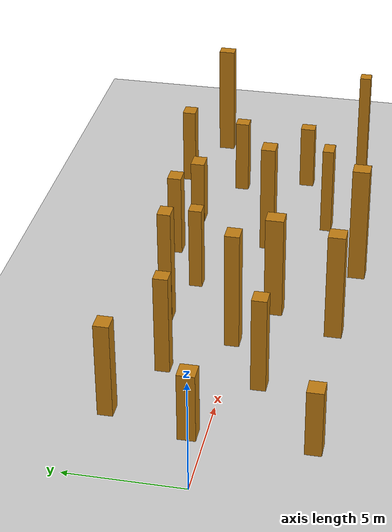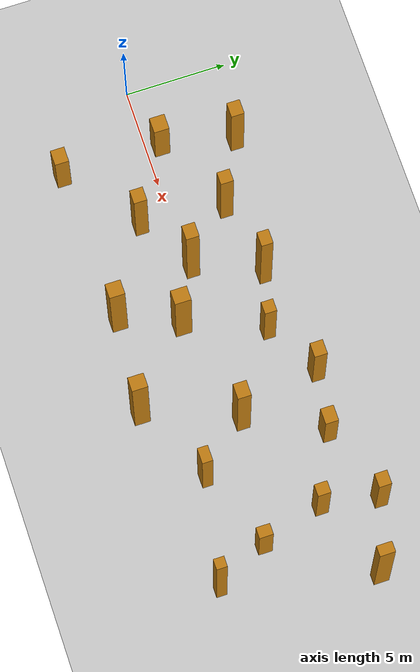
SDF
<sdf version="1.7">
 <world name="default">
  <light name="sun" type="directional">
   <pose>0 0 10 0 -0 0</pose>
   <diffuse>0.8 0.8 0.8 1</diffuse>
   <specular>0.2 0.2 0.2 1</specular>
   <attenuation>
    <range>1000</range>
    <constant>0.9</constant>
    <linear>0.01</linear>
    <quadratic>0.001</quadratic>
   </attenuation>
   <direction>-0.5 0.1 -0.9</direction>
   <spot><inner_angle>0</inner_angle><outer_angle>0</outer_angle><falloff>0</falloff></spot>
  </light>
  <model name="ground_plane">
   <static>1</static>
   <link name="link">
    <collision name="collision">
     <geometry><plane><normal>0 0 1</normal><size>100 100</size></plane></geometry>
     <surface>
      <contact><collide_bitmask>65535</collide_bitmask></contact>
      <friction><ode><mu>100</mu><mu2>50</mu2></ode></friction>
     </surface>
    </collision>
    <visual name="visual">
     <cast_shadows>0</cast_shadows>
     <geometry><plane><normal>0 0 1</normal><size>100 100</size></plane></geometry>
     <material>
      <script><uri>file://media/materials/scripts/gazebo.material</uri><name>Gazebo/Grey</name></script>
     </material>
    </visual>
   </link>
  </model>
  <gravity>0 0 -9.8</gravity>
  <magnetic_field>6e-06 2.3e-05 -4.2e-05</magnetic_field>
  <atmosphere type="adiabatic"/>
  <physics type="ode">
   <max_step_size>0.001</max_step_size>
   <real_time_factor>1</real_time_factor>
   <real_time_update_rate>1000</real_time_update_rate>
  </physics>
  <scene><ambient>0.4 0.4 0.4 1</ambient><background>0.7 0.7 0.7 1</background><shadows>1</shadows></scene>
  <spherical_coordinates>
   <surface_model>EARTH_WGS84</surface_model>
   <latitude_deg>0</latitude_deg>
   <longitude_deg>0</longitude_deg>
   <elevation>0</elevation>
   <heading_deg>0</heading_deg>
  </spherical_coordinates>
  <plugin name="gazebo_octomap" filename="libBuildOctomapPlugin.so"/>
  <model name="model0">
   <link name="link">
    <inertial>
     <mass>1</mass>
     <inertia>
      <ixx>0.166667</ixx>
      <ixy>0</ixy>
      <ixz>0</ixz>
      <iyy>0.166667</iyy>
      <iyz>0</iyz>
      <izz>0.166667</izz>
     </inertia>
    </inertial>
    <visual name="visual">
     <geometry><box><size>0.7628283542211092 0.5104891546530635 4.26483071556089</size></box></geometry>
     <material>
      <script><name>Gazebo/Grey</name><uri>file://media/materials/scripts/gazebo.material</uri></script>
      <shader type="pixel"><normal_map>__default__</normal_map></shader>
      <ambient>0.757 0.49 0.067 1</ambient>
      <diffuse>0.7 0.7 0.7 1</diffuse>
      <specular>0.01 0.01 0.01 1</specular>
      <emissive>0 0 0 1</emissive>
     </material>
    </visual>
    <collision name="collision">
     <geometry><box><size>0.7628283542211092 0.5104891546530635 4.26483071556089</size></box></geometry>
     <surface>
      <friction>
       <ode><mu>1</mu><mu2>1</mu2><fdir1>0 0 0</fdir1><slip1>0</slip1><slip2>0</slip2></ode>
       <torsional>
        <coefficient>1</coefficient>
        <patch_radius>0</patch_radius>
        <surface_radius>0</surface_radius>
        <use_patch_radius>1</use_patch_radius>
        <ode><slip>0</slip></ode>
       </torsional>
      </friction>
      <bounce><restitution_coefficient>0</restitution_coefficient><threshold>1e+06</threshold></bounce>
      <contact>
       <collide_without_contact>0</collide_without_contact>
       <collide_without_contact_bitmask>1</collide_without_contact_bitmask>
       <collide_bitmask>1</collide_bitmask>
       <ode>
        <soft_cfm>0</soft_cfm>
        <soft_erp>0.2</soft_erp>
        <kp>1e+13</kp>
        <kd>1</kd>
        <max_vel>0.01</max_vel>
        <min_depth>0</min_depth>
       </ode>
       <bullet>
        <split_impulse>1</split_impulse>
        <split_impulse_penetration_threshold>-0.01</split_impulse_penetration_threshold>
        <soft_cfm>0</soft_cfm>
        <soft_erp>0.2</soft_erp>
        <kp>1e+13</kp>
        <kd>1</kd>
       </bullet>
      </contact>
     </surface>
    </collision>
   </link>
   <static>0</static>
   <pose>19.665522266672287 -2.4682899309614226 2.132415357780445 0.0 0.0 0.0</pose>
  </model>
  <model name="model1">
   <link name="link">
    <inertial>
     <mass>1</mass>
     <inertia>
      <ixx>0.166667</ixx>
      <ixy>0</ixy>
      <ixz>0</ixz>
      <iyy>0.166667</iyy>
      <iyz>0</iyz>
      <izz>0.166667</izz>
     </inertia>
    </inertial>
    <visual name="visual">
     <geometry><box><size>0.5104946256287669 0.5109382432861893 5.501456208058672</size></box></geometry>
     <material>
      <script><name>Gazebo/Grey</name><uri>file://media/materials/scripts/gazebo.material</uri></script>
      <shader type="pixel"><normal_map>__default__</normal_map></shader>
      <ambient>0.757 0.49 0.067 1</ambient>
      <diffuse>0.7 0.7 0.7 1</diffuse>
      <specular>0.01 0.01 0.01 1</specular>
      <emissive>0 0 0 1</emissive>
     </material>
    </visual>
    <collision name="collision">
     <geometry><box><size>0.5104946256287669 0.5109382432861893 5.501456208058672</size></box></geometry>
     <surface>
      <friction>
       <ode><mu>1</mu><mu2>1</mu2><fdir1>0 0 0</fdir1><slip1>0</slip1><slip2>0</slip2></ode>
       <torsional>
        <coefficient>1</coefficient>
        <patch_radius>0</patch_radius>
        <surface_radius>0</surface_radius>
        <use_patch_radius>1</use_patch_radius>
        <ode><slip>0</slip></ode>
       </torsional>
      </friction>
      <bounce><restitution_coefficient>0</restitution_coefficient><threshold>1e+06</threshold></bounce>
      <contact>
       <collide_without_contact>0</collide_without_contact>
       <collide_without_contact_bitmask>1</collide_without_contact_bitmask>
       <collide_bitmask>1</collide_bitmask>
       <ode>
        <soft_cfm>0</soft_cfm>
        <soft_erp>0.2</soft_erp>
        <kp>1e+13</kp>
        <kd>1</kd>
        <max_vel>0.01</max_vel>
        <min_depth>0</min_depth>
       </ode>
       <bullet>
        <split_impulse>1</split_impulse>
        <split_impulse_penetration_threshold>-0.01</split_impulse_penetration_threshold>
        <soft_cfm>0</soft_cfm>
        <soft_erp>0.2</soft_erp>
        <kp>1e+13</kp>
        <kd>1</kd>
       </bullet>
      </contact>
     </surface>
    </collision>
   </link>
   <static>0</static>
   <pose>24.961154485777374 -3.5035631727208836 2.750728104029336 0.0 0.0 0.0</pose>
  </model>
  <model name="model2">
   <link name="link">
    <inertial>
     <mass>1</mass>
     <inertia>
      <ixx>0.166667</ixx>
      <ixy>0</ixy>
      <ixz>0</ixz>
      <iyy>0.166667</iyy>
      <iyz>0</iyz>
      <izz>0.166667</izz>
     </inertia>
    </inertial>
    <visual name="visual">
     <geometry><box><size>0.708973643089228 0.7974899755338278 4.81063264748637</size></box></geometry>
     <material>
      <script><name>Gazebo/Grey</name><uri>file://media/materials/scripts/gazebo.material</uri></script>
      <shader type="pixel"><normal_map>__default__</normal_map></shader>
      <ambient>0.757 0.49 0.067 1</ambient>
      <diffuse>0.7 0.7 0.7 1</diffuse>
      <specular>0.01 0.01 0.01 1</specular>
      <emissive>0 0 0 1</emissive>
     </material>
    </visual>
    <collision name="collision">
     <geometry><box><size>0.708973643089228 0.7974899755338278 4.81063264748637</size></box></geometry>
     <surface>
      <friction>
       <ode><mu>1</mu><mu2>1</mu2><fdir1>0 0 0</fdir1><slip1>0</slip1><slip2>0</slip2></ode>
       <torsional>
        <coefficient>1</coefficient>
        <patch_radius>0</patch_radius>
        <surface_radius>0</surface_radius>
        <use_patch_radius>1</use_patch_radius>
        <ode><slip>0</slip></ode>
       </torsional>
      </friction>
      <bounce><restitution_coefficient>0</restitution_coefficient><threshold>1e+06</threshold></bounce>
      <contact>
       <collide_without_contact>0</collide_without_contact>
       <collide_without_contact_bitmask>1</collide_without_contact_bitmask>
       <collide_bitmask>1</collide_bitmask>
       <ode>
        <soft_cfm>0</soft_cfm>
        <soft_erp>0.2</soft_erp>
        <kp>1e+13</kp>
        <kd>1</kd>
        <max_vel>0.01</max_vel>
        <min_depth>0</min_depth>
       </ode>
       <bullet>
        <split_impulse>1</split_impulse>
        <split_impulse_penetration_threshold>-0.01</split_impulse_penetration_threshold>
        <soft_cfm>0</soft_cfm>
        <soft_erp>0.2</soft_erp>
        <kp>1e+13</kp>
        <kd>1</kd>
       </bullet>
      </contact>
     </surface>
    </collision>
   </link>
   <static>0</static>
   <pose>12.245718120681722 -1.1823917641248194 2.405316323743185 0.0 0.0 0.0</pose>
  </model>
  <model name="model3">
   <link name="link">
    <inertial>
     <mass>1</mass>
     <inertia>
      <ixx>0.166667</ixx>
      <ixy>0</ixy>
      <ixz>0</ixz>
      <iyy>0.166667</iyy>
      <iyz>0</iyz>
      <izz>0.166667</izz>
     </inertia>
    </inertial>
    <visual name="visual">
     <geometry><box><size>0.7205115883669805 0.6364036782757115 5.47503452337823</size></box></geometry>
     <material>
      <script><name>Gazebo/Grey</name><uri>file://media/materials/scripts/gazebo.material</uri></script>
      <shader type="pixel"><normal_map>__default__</normal_map></shader>
      <ambient>0.757 0.49 0.067 1</ambient>
      <diffuse>0.7 0.7 0.7 1</diffuse>
      <specular>0.01 0.01 0.01 1</specular>
      <emissive>0 0 0 1</emissive>
     </material>
    </visual>
    <collision name="collision">
     <geometry><box><size>0.7205115883669805 0.6364036782757115 5.47503452337823</size></box></geometry>
     <surface>
      <friction>
       <ode><mu>1</mu><mu2>1</mu2><fdir1>0 0 0</fdir1><slip1>0</slip1><slip2>0</slip2></ode>
       <torsional>
        <coefficient>1</coefficient>
        <patch_radius>0</patch_radius>
        <surface_radius>0</surface_radius>
        <use_patch_radius>1</use_patch_radius>
        <ode><slip>0</slip></ode>
       </torsional>
      </friction>
      <bounce><restitution_coefficient>0</restitution_coefficient><threshold>1e+06</threshold></bounce>
      <contact>
       <collide_without_contact>0</collide_without_contact>
       <collide_without_contact_bitmask>1</collide_without_contact_bitmask>
       <collide_bitmask>1</collide_bitmask>
       <ode>
        <soft_cfm>0</soft_cfm>
        <soft_erp>0.2</soft_erp>
        <kp>1e+13</kp>
        <kd>1</kd>
        <max_vel>0.01</max_vel>
        <min_depth>0</min_depth>
       </ode>
       <bullet>
        <split_impulse>1</split_impulse>
        <split_impulse_penetration_threshold>-0.01</split_impulse_penetration_threshold>
        <soft_cfm>0</soft_cfm>
        <soft_erp>0.2</soft_erp>
        <kp>1e+13</kp>
        <kd>1</kd>
       </bullet>
      </contact>
     </surface>
    </collision>
   </link>
   <static>0</static>
   <pose>9.627328036526936 0.15198017195775737 2.737517261689115 0.0 0.0 0.0</pose>
  </model>
  <model name="model4">
   <link name="link">
    <inertial>
     <mass>1</mass>
     <inertia>
      <ixx>0.166667</ixx>
      <ixy>0</ixy>
      <ixz>0</ixz>
      <iyy>0.166667</iyy>
      <iyz>0</iyz>
      <izz>0.166667</izz>
     </inertia>
    </inertial>
    <visual name="visual">
     <geometry><box><size>0.5415839349871882 0.6759867986146829 3.1485874312061184</size></box></geometry>
     <material>
      <script><name>Gazebo/Grey</name><uri>file://media/materials/scripts/gazebo.material</uri></script>
      <shader type="pixel"><normal_map>__default__</normal_map></shader>
      <ambient>0.757 0.49 0.067 1</ambient>
      <diffuse>0.7 0.7 0.7 1</diffuse>
      <specular>0.01 0.01 0.01 1</specular>
      <emissive>0 0 0 1</emissive>
     </material>
    </visual>
    <collision name="collision">
     <geometry><box><size>0.5415839349871882 0.6759867986146829 3.1485874312061184</size></box></geometry>
     <surface>
      <friction>
       <ode><mu>1</mu><mu2>1</mu2><fdir1>0 0 0</fdir1><slip1>0</slip1><slip2>0</slip2></ode>
       <torsional>
        <coefficient>1</coefficient>
        <patch_radius>0</patch_radius>
        <surface_radius>0</surface_radius>
        <use_patch_radius>1</use_patch_radius>
        <ode><slip>0</slip></ode>
       </torsional>
      </friction>
      <bounce><restitution_coefficient>0</restitution_coefficient><threshold>1e+06</threshold></bounce>
      <contact>
       <collide_without_contact>0</collide_without_contact>
       <collide_without_contact_bitmask>1</collide_without_contact_bitmask>
       <collide_bitmask>1</collide_bitmask>
       <ode>
        <soft_cfm>0</soft_cfm>
        <soft_erp>0.2</soft_erp>
        <kp>1e+13</kp>
        <kd>1</kd>
        <max_vel>0.01</max_vel>
        <min_depth>0</min_depth>
       </ode>
       <bullet>
        <split_impulse>1</split_impulse>
        <split_impulse_penetration_threshold>-0.01</split_impulse_penetration_threshold>
        <soft_cfm>0</soft_cfm>
        <soft_erp>0.2</soft_erp>
        <kp>1e+13</kp>
        <kd>1</kd>
       </bullet>
      </contact>
     </surface>
    </collision>
   </link>
   <static>0</static>
   <pose>23.64490482449817 -0.938474373036394 1.5742937156030592 0.0 0.0 0.0</pose>
  </model>
  <model name="model5">
   <link name="link">
    <inertial>
     <mass>1</mass>
     <inertia>
      <ixx>0.166667</ixx>
      <ixy>0</ixy>
      <ixz>0</ixz>
      <iyy>0.166667</iyy>
      <iyz>0</iyz>
      <izz>0.166667</izz>
     </inertia>
    </inertial>
    <visual name="visual">
     <geometry><box><size>0.5823470403490755 0.6299547772762206 3.6116557819007706</size></box></geometry>
     <material>
      <script><name>Gazebo/Grey</name><uri>file://media/materials/scripts/gazebo.material</uri></script>
      <shader type="pixel"><normal_map>__default__</normal_map></shader>
      <ambient>0.757 0.49 0.067 1</ambient>
      <diffuse>0.7 0.7 0.7 1</diffuse>
      <specular>0.01 0.01 0.01 1</specular>
      <emissive>0 0 0 1</emissive>
     </material>
    </visual>
    <collision name="collision">
     <geometry><box><size>0.5823470403490755 0.6299547772762206 3.6116557819007706</size></box></geometry>
     <surface>
      <friction>
       <ode><mu>1</mu><mu2>1</mu2><fdir1>0 0 0</fdir1><slip1>0</slip1><slip2>0</slip2></ode>
       <torsional>
        <coefficient>1</coefficient>
        <patch_radius>0</patch_radius>
        <surface_radius>0</surface_radius>
        <use_patch_radius>1</use_patch_radius>
        <ode><slip>0</slip></ode>
       </torsional>
      </friction>
      <bounce><restitution_coefficient>0</restitution_coefficient><threshold>1e+06</threshold></bounce>
      <contact>
       <collide_without_contact>0</collide_without_contact>
       <collide_without_contact_bitmask>1</collide_without_contact_bitmask>
       <collide_bitmask>1</collide_bitmask>
       <ode>
        <soft_cfm>0</soft_cfm>
        <soft_erp>0.2</soft_erp>
        <kp>1e+13</kp>
        <kd>1</kd>
        <max_vel>0.01</max_vel>
        <min_depth>0</min_depth>
       </ode>
       <bullet>
        <split_impulse>1</split_impulse>
        <split_impulse_penetration_threshold>-0.01</split_impulse_penetration_threshold>
        <soft_cfm>0</soft_cfm>
        <soft_erp>0.2</soft_erp>
        <kp>1e+13</kp>
        <kd>1</kd>
       </bullet>
      </contact>
     </surface>
    </collision>
   </link>
   <static>0</static>
   <pose>22.707644993249197 2.1530666950125923 1.8058278909503853 0.0 0.0 0.0</pose>
  </model>
  <model name="model6">
   <link name="link">
    <inertial>
     <mass>1</mass>
     <inertia>
      <ixx>0.166667</ixx>
      <ixy>0</ixy>
      <ixz>0</ixz>
      <iyy>0.166667</iyy>
      <iyz>0</iyz>
      <izz>0.166667</izz>
     </inertia>
    </inertial>
    <visual name="visual">
     <geometry><box><size>0.7150712085694322 0.5713284135176021 5.344810751559454</size></box></geometry>
     <material>
      <script><name>Gazebo/Grey</name><uri>file://media/materials/scripts/gazebo.material</uri></script>
      <shader type="pixel"><normal_map>__default__</normal_map></shader>
      <ambient>0.757 0.49 0.067 1</ambient>
      <diffuse>0.7 0.7 0.7 1</diffuse>
      <specular>0.01 0.01 0.01 1</specular>
      <emissive>0 0 0 1</emissive>
     </material>
    </visual>
    <collision name="collision">
     <geometry><box><size>0.7150712085694322 0.5713284135176021 5.344810751559454</size></box></geometry>
     <surface>
      <friction>
       <ode><mu>1</mu><mu2>1</mu2><fdir1>0 0 0</fdir1><slip1>0</slip1><slip2>0</slip2></ode>
       <torsional>
        <coefficient>1</coefficient>
        <patch_radius>0</patch_radius>
        <surface_radius>0</surface_radius>
        <use_patch_radius>1</use_patch_radius>
        <ode><slip>0</slip></ode>
       </torsional>
      </friction>
      <bounce><restitution_coefficient>0</restitution_coefficient><threshold>1e+06</threshold></bounce>
      <contact>
       <collide_without_contact>0</collide_without_contact>
       <collide_without_contact_bitmask>1</collide_without_contact_bitmask>
       <collide_bitmask>1</collide_bitmask>
       <ode>
        <soft_cfm>0</soft_cfm>
        <soft_erp>0.2</soft_erp>
        <kp>1e+13</kp>
        <kd>1</kd>
        <max_vel>0.01</max_vel>
        <min_depth>0</min_depth>
       </ode>
       <bullet>
        <split_impulse>1</split_impulse>
        <split_impulse_penetration_threshold>-0.01</split_impulse_penetration_threshold>
        <soft_cfm>0</soft_cfm>
        <soft_erp>0.2</soft_erp>
        <kp>1e+13</kp>
        <kd>1</kd>
       </bullet>
      </contact>
     </surface>
    </collision>
   </link>
   <static>0</static>
   <pose>10.980131615634473 3.330228856818577 2.672405375779727 0.0 0.0 0.0</pose>
  </model>
  <model name="model7">
   <link name="link">
    <inertial>
     <mass>1</mass>
     <inertia>
      <ixx>0.166667</ixx>
      <ixy>0</ixy>
      <ixz>0</ixz>
      <iyy>0.166667</iyy>
      <iyz>0</iyz>
      <izz>0.166667</izz>
     </inertia>
    </inertial>
    <visual name="visual">
     <geometry><box><size>0.7633105504935005 0.6900684113748242 3.0277289446170217</size></box></geometry>
     <material>
      <script><name>Gazebo/Grey</name><uri>file://media/materials/scripts/gazebo.material</uri></script>
      <shader type="pixel"><normal_map>__default__</normal_map></shader>
      <ambient>0.757 0.49 0.067 1</ambient>
      <diffuse>0.7 0.7 0.7 1</diffuse>
      <specular>0.01 0.01 0.01 1</specular>
      <emissive>0 0 0 1</emissive>
     </material>
    </visual>
    <collision name="collision">
     <geometry><box><size>0.7633105504935005 0.6900684113748242 3.0277289446170217</size></box></geometry>
     <surface>
      <friction>
       <ode><mu>1</mu><mu2>1</mu2><fdir1>0 0 0</fdir1><slip1>0</slip1><slip2>0</slip2></ode>
       <torsional>
        <coefficient>1</coefficient>
        <patch_radius>0</patch_radius>
        <surface_radius>0</surface_radius>
        <use_patch_radius>1</use_patch_radius>
        <ode><slip>0</slip></ode>
       </torsional>
      </friction>
      <bounce><restitution_coefficient>0</restitution_coefficient><threshold>1e+06</threshold></bounce>
      <contact>
       <collide_without_contact>0</collide_without_contact>
       <collide_without_contact_bitmask>1</collide_without_contact_bitmask>
       <collide_bitmask>1</collide_bitmask>
       <ode>
        <soft_cfm>0</soft_cfm>
        <soft_erp>0.2</soft_erp>
        <kp>1e+13</kp>
        <kd>1</kd>
        <max_vel>0.01</max_vel>
        <min_depth>0</min_depth>
       </ode>
       <bullet>
        <split_impulse>1</split_impulse>
        <split_impulse_penetration_threshold>-0.01</split_impulse_penetration_threshold>
        <soft_cfm>0</soft_cfm>
        <soft_erp>0.2</soft_erp>
        <kp>1e+13</kp>
        <kd>1</kd>
       </bullet>
      </contact>
     </surface>
    </collision>
   </link>
   <static>0</static>
   <pose>3.2165446819768313 -4.292522170971412 1.5138644723085108 0.0 0.0 0.0</pose>
  </model>
  <model name="model8">
   <link name="link">
    <inertial>
     <mass>1</mass>
     <inertia>
      <ixx>0.166667</ixx>
      <ixy>0</ixy>
      <ixz>0</ixz>
      <iyy>0.166667</iyy>
      <iyz>0</iyz>
      <izz>0.166667</izz>
     </inertia>
    </inertial>
    <visual name="visual">
     <geometry><box><size>0.7737278202334392 0.7498753631040336 3.1315445466677736</size></box></geometry>
     <material>
      <script><name>Gazebo/Grey</name><uri>file://media/materials/scripts/gazebo.material</uri></script>
      <shader type="pixel"><normal_map>__default__</normal_map></shader>
      <ambient>0.757 0.49 0.067 1</ambient>
      <diffuse>0.7 0.7 0.7 1</diffuse>
      <specular>0.01 0.01 0.01 1</specular>
      <emissive>0 0 0 1</emissive>
     </material>
    </visual>
    <collision name="collision">
     <geometry><box><size>0.7737278202334392 0.7498753631040336 3.1315445466677736</size></box></geometry>
     <surface>
      <friction>
       <ode><mu>1</mu><mu2>1</mu2><fdir1>0 0 0</fdir1><slip1>0</slip1><slip2>0</slip2></ode>
       <torsional>
        <coefficient>1</coefficient>
        <patch_radius>0</patch_radius>
        <surface_radius>0</surface_radius>
        <use_patch_radius>1</use_patch_radius>
        <ode><slip>0</slip></ode>
       </torsional>
      </friction>
      <bounce><restitution_coefficient>0</restitution_coefficient><threshold>1e+06</threshold></bounce>
      <contact>
       <collide_without_contact>0</collide_without_contact>
       <collide_without_contact_bitmask>1</collide_without_contact_bitmask>
       <collide_bitmask>1</collide_bitmask>
       <ode>
        <soft_cfm>0</soft_cfm>
        <soft_erp>0.2</soft_erp>
        <kp>1e+13</kp>
        <kd>1</kd>
        <max_vel>0.01</max_vel>
        <min_depth>0</min_depth>
       </ode>
       <bullet>
        <split_impulse>1</split_impulse>
        <split_impulse_penetration_threshold>-0.01</split_impulse_penetration_threshold>
        <soft_cfm>0</soft_cfm>
        <soft_erp>0.2</soft_erp>
        <kp>1e+13</kp>
        <kd>1</kd>
       </bullet>
      </contact>
     </surface>
    </collision>
   </link>
   <static>0</static>
   <pose>3.1681355438164855 0.6996386803867995 1.5657722733338868 0.0 0.0 0.0</pose>
  </model>
  <model name="model9">
   <link name="link">
    <inertial>
     <mass>1</mass>
     <inertia>
      <ixx>0.166667</ixx>
      <ixy>0</ixy>
      <ixz>0</ixz>
      <iyy>0.166667</iyy>
      <iyz>0</iyz>
      <izz>0.166667</izz>
     </inertia>
    </inertial>
    <visual name="visual">
     <geometry><box><size>0.6907167760505852 0.7643705694955327 5.523729865389686</size></box></geometry>
     <material>
      <script><name>Gazebo/Grey</name><uri>file://media/materials/scripts/gazebo.material</uri></script>
      <shader type="pixel"><normal_map>__default__</normal_map></shader>
      <ambient>0.757 0.49 0.067 1</ambient>
      <diffuse>0.7 0.7 0.7 1</diffuse>
      <specular>0.01 0.01 0.01 1</specular>
      <emissive>0 0 0 1</emissive>
     </material>
    </visual>
    <collision name="collision">
     <geometry><box><size>0.6907167760505852 0.7643705694955327 5.523729865389686</size></box></geometry>
     <surface>
      <friction>
       <ode><mu>1</mu><mu2>1</mu2><fdir1>0 0 0</fdir1><slip1>0</slip1><slip2>0</slip2></ode>
       <torsional>
        <coefficient>1</coefficient>
        <patch_radius>0</patch_radius>
        <surface_radius>0</surface_radius>
        <use_patch_radius>1</use_patch_radius>
        <ode><slip>0</slip></ode>
       </torsional>
      </friction>
      <bounce><restitution_coefficient>0</restitution_coefficient><threshold>1e+06</threshold></bounce>
      <contact>
       <collide_without_contact>0</collide_without_contact>
       <collide_without_contact_bitmask>1</collide_without_contact_bitmask>
       <collide_bitmask>1</collide_bitmask>
       <ode>
        <soft_cfm>0</soft_cfm>
        <soft_erp>0.2</soft_erp>
        <kp>1e+13</kp>
        <kd>1</kd>
        <max_vel>0.01</max_vel>
        <min_depth>0</min_depth>
       </ode>
       <bullet>
        <split_impulse>1</split_impulse>
        <split_impulse_penetration_threshold>-0.01</split_impulse_penetration_threshold>
        <soft_cfm>0</soft_cfm>
        <soft_erp>0.2</soft_erp>
        <kp>1e+13</kp>
        <kd>1</kd>
       </bullet>
      </contact>
     </surface>
    </collision>
   </link>
   <static>0</static>
   <pose>15.82114846485965 -4.40296288581056 2.761864932694843 0.0 0.0 0.0</pose>
  </model>
  <model name="model10">
   <link name="link">
    <inertial>
     <mass>1</mass>
     <inertia>
      <ixx>0.166667</ixx>
      <ixy>0</ixy>
      <ixz>0</ixz>
      <iyy>0.166667</iyy>
      <iyz>0</iyz>
      <izz>0.166667</izz>
     </inertia>
    </inertial>
    <visual name="visual">
     <geometry><box><size>0.7474835824992785 0.6501406756835282 5.221307194284503</size></box></geometry>
     <material>
      <script><name>Gazebo/Grey</name><uri>file://media/materials/scripts/gazebo.material</uri></script>
      <shader type="pixel"><normal_map>__default__</normal_map></shader>
      <ambient>0.757 0.49 0.067 1</ambient>
      <diffuse>0.7 0.7 0.7 1</diffuse>
      <specular>0.01 0.01 0.01 1</specular>
      <emissive>0 0 0 1</emissive>
     </material>
    </visual>
    <collision name="collision">
     <geometry><box><size>0.7474835824992785 0.6501406756835282 5.221307194284503</size></box></geometry>
     <surface>
      <friction>
       <ode><mu>1</mu><mu2>1</mu2><fdir1>0 0 0</fdir1><slip1>0</slip1><slip2>0</slip2></ode>
       <torsional>
        <coefficient>1</coefficient>
        <patch_radius>0</patch_radius>
        <surface_radius>0</surface_radius>
        <use_patch_radius>1</use_patch_radius>
        <ode><slip>0</slip></ode>
       </torsional>
      </friction>
      <bounce><restitution_coefficient>0</restitution_coefficient><threshold>1e+06</threshold></bounce>
      <contact>
       <collide_without_contact>0</collide_without_contact>
       <collide_without_contact_bitmask>1</collide_without_contact_bitmask>
       <collide_bitmask>1</collide_bitmask>
       <ode>
        <soft_cfm>0</soft_cfm>
        <soft_erp>0.2</soft_erp>
        <kp>1e+13</kp>
        <kd>1</kd>
        <max_vel>0.01</max_vel>
        <min_depth>0</min_depth>
       </ode>
       <bullet>
        <split_impulse>1</split_impulse>
        <split_impulse_penetration_threshold>-0.01</split_impulse_penetration_threshold>
        <soft_cfm>0</soft_cfm>
        <soft_erp>0.2</soft_erp>
        <kp>1e+13</kp>
        <kd>1</kd>
       </bullet>
      </contact>
     </surface>
    </collision>
   </link>
   <static>0</static>
   <pose>17.561543982386738 0.008237883053078043 2.6106535971422513 0.0 0.0 0.0</pose>
  </model>
  <model name="model11">
   <link name="link">
    <inertial>
     <mass>1</mass>
     <inertia>
      <ixx>0.166667</ixx>
      <ixy>0</ixy>
      <ixz>0</ixz>
      <iyy>0.166667</iyy>
      <iyz>0</iyz>
      <izz>0.166667</izz>
     </inertia>
    </inertial>
    <visual name="visual">
     <geometry><box><size>0.7118838269696044 0.624573676157755 3.9267784640267323</size></box></geometry>
     <material>
      <script><name>Gazebo/Grey</name><uri>file://media/materials/scripts/gazebo.material</uri></script>
      <shader type="pixel"><normal_map>__default__</normal_map></shader>
      <ambient>0.757 0.49 0.067 1</ambient>
      <diffuse>0.7 0.7 0.7 1</diffuse>
      <specular>0.01 0.01 0.01 1</specular>
      <emissive>0 0 0 1</emissive>
     </material>
    </visual>
    <collision name="collision">
     <geometry><box><size>0.7118838269696044 0.624573676157755 3.9267784640267323</size></box></geometry>
     <surface>
      <friction>
       <ode><mu>1</mu><mu2>1</mu2><fdir1>0 0 0</fdir1><slip1>0</slip1><slip2>0</slip2></ode>
       <torsional>
        <coefficient>1</coefficient>
        <patch_radius>0</patch_radius>
        <surface_radius>0</surface_radius>
        <use_patch_radius>1</use_patch_radius>
        <ode><slip>0</slip></ode>
       </torsional>
      </friction>
      <bounce><restitution_coefficient>0</restitution_coefficient><threshold>1e+06</threshold></bounce>
      <contact>
       <collide_without_contact>0</collide_without_contact>
       <collide_without_contact_bitmask>1</collide_without_contact_bitmask>
       <collide_bitmask>1</collide_bitmask>
       <ode>
        <soft_cfm>0</soft_cfm>
        <soft_erp>0.2</soft_erp>
        <kp>1e+13</kp>
        <kd>1</kd>
        <max_vel>0.01</max_vel>
        <min_depth>0</min_depth>
       </ode>
       <bullet>
        <split_impulse>1</split_impulse>
        <split_impulse_penetration_threshold>-0.01</split_impulse_penetration_threshold>
        <soft_cfm>0</soft_cfm>
        <soft_erp>0.2</soft_erp>
        <kp>1e+13</kp>
        <kd>1</kd>
       </bullet>
      </contact>
     </surface>
    </collision>
   </link>
   <static>0</static>
   <pose>16.41681701403528 4.1228580317286045 1.9633892320133661 0.0 0.0 0.0</pose>
  </model>
  <model name="model12">
   <link name="link">
    <inertial>
     <mass>1</mass>
     <inertia>
      <ixx>0.166667</ixx>
      <ixy>0</ixy>
      <ixz>0</ixz>
      <iyy>0.166667</iyy>
      <iyz>0</iyz>
      <izz>0.166667</izz>
     </inertia>
    </inertial>
    <visual name="visual">
     <geometry><box><size>0.6889491920358437 0.642778192684732 4.409847848366471</size></box></geometry>
     <material>
      <script><name>Gazebo/Grey</name><uri>file://media/materials/scripts/gazebo.material</uri></script>
      <shader type="pixel"><normal_map>__default__</normal_map></shader>
      <ambient>0.757 0.49 0.067 1</ambient>
      <diffuse>0.7 0.7 0.7 1</diffuse>
      <specular>0.01 0.01 0.01 1</specular>
      <emissive>0 0 0 1</emissive>
     </material>
    </visual>
    <collision name="collision">
     <geometry><box><size>0.6889491920358437 0.642778192684732 4.409847848366471</size></box></geometry>
     <surface>
      <friction>
       <ode><mu>1</mu><mu2>1</mu2><fdir1>0 0 0</fdir1><slip1>0</slip1><slip2>0</slip2></ode>
       <torsional>
        <coefficient>1</coefficient>
        <patch_radius>0</patch_radius>
        <surface_radius>0</surface_radius>
        <use_patch_radius>1</use_patch_radius>
        <ode><slip>0</slip></ode>
       </torsional>
      </friction>
      <bounce><restitution_coefficient>0</restitution_coefficient><threshold>1e+06</threshold></bounce>
      <contact>
       <collide_without_contact>0</collide_without_contact>
       <collide_without_contact_bitmask>1</collide_without_contact_bitmask>
       <collide_bitmask>1</collide_bitmask>
       <ode>
        <soft_cfm>0</soft_cfm>
        <soft_erp>0.2</soft_erp>
        <kp>1e+13</kp>
        <kd>1</kd>
        <max_vel>0.01</max_vel>
        <min_depth>0</min_depth>
       </ode>
       <bullet>
        <split_impulse>1</split_impulse>
        <split_impulse_penetration_threshold>-0.01</split_impulse_penetration_threshold>
        <soft_cfm>0</soft_cfm>
        <soft_erp>0.2</soft_erp>
        <kp>1e+13</kp>
        <kd>1</kd>
       </bullet>
      </contact>
     </surface>
    </collision>
   </link>
   <static>0</static>
   <pose>6.799075704871645 -1.4913857078304806 2.2049239241832357 0.0 0.0 0.0</pose>
  </model>
  <model name="model13">
   <link name="link">
    <inertial>
     <mass>1</mass>
     <inertia>
      <ixx>0.166667</ixx>
      <ixy>0</ixy>
      <ixz>0</ixz>
      <iyy>0.166667</iyy>
      <iyz>0</iyz>
      <izz>0.166667</izz>
     </inertia>
    </inertial>
    <visual name="visual">
     <geometry><box><size>0.6799056245100198 0.6097214487593201 3.7447514649054425</size></box></geometry>
     <material>
      <script><name>Gazebo/Grey</name><uri>file://media/materials/scripts/gazebo.material</uri></script>
      <shader type="pixel"><normal_map>__default__</normal_map></shader>
      <ambient>0.757 0.49 0.067 1</ambient>
      <diffuse>0.7 0.7 0.7 1</diffuse>
      <specular>0.01 0.01 0.01 1</specular>
      <emissive>0 0 0 1</emissive>
     </material>
    </visual>
    <collision name="collision">
     <geometry><box><size>0.6799056245100198 0.6097214487593201 3.7447514649054425</size></box></geometry>
     <surface>
      <friction>
       <ode><mu>1</mu><mu2>1</mu2><fdir1>0 0 0</fdir1><slip1>0</slip1><slip2>0</slip2></ode>
       <torsional>
        <coefficient>1</coefficient>
        <patch_radius>0</patch_radius>
        <surface_radius>0</surface_radius>
        <use_patch_radius>1</use_patch_radius>
        <ode><slip>0</slip></ode>
       </torsional>
      </friction>
      <bounce><restitution_coefficient>0</restitution_coefficient><threshold>1e+06</threshold></bounce>
      <contact>
       <collide_without_contact>0</collide_without_contact>
       <collide_without_contact_bitmask>1</collide_without_contact_bitmask>
       <collide_bitmask>1</collide_bitmask>
       <ode>
        <soft_cfm>0</soft_cfm>
        <soft_erp>0.2</soft_erp>
        <kp>1e+13</kp>
        <kd>1</kd>
        <max_vel>0.01</max_vel>
        <min_depth>0</min_depth>
       </ode>
       <bullet>
        <split_impulse>1</split_impulse>
        <split_impulse_penetration_threshold>-0.01</split_impulse_penetration_threshold>
        <soft_cfm>0</soft_cfm>
        <soft_erp>0.2</soft_erp>
        <kp>1e+13</kp>
        <kd>1</kd>
       </bullet>
      </contact>
     </surface>
    </collision>
   </link>
   <static>0</static>
   <pose>23.173958464304633 4.900014148187417 1.8723757324527213 0.0 0.0 0.0</pose>
  </model>
  <model name="model14">
   <link name="link">
    <inertial>
     <mass>1</mass>
     <inertia>
      <ixx>0.166667</ixx>
      <ixy>0</ixy>
      <ixz>0</ixz>
      <iyy>0.166667</iyy>
      <iyz>0</iyz>
      <izz>0.166667</izz>
     </inertia>
    </inertial>
    <visual name="visual">
     <geometry><box><size>0.6273904054700281 0.6292784027173948 4.591124467984779</size></box></geometry>
     <material>
      <script><name>Gazebo/Grey</name><uri>file://media/materials/scripts/gazebo.material</uri></script>
      <shader type="pixel"><normal_map>__default__</normal_map></shader>
      <ambient>0.757 0.49 0.067 1</ambient>
      <diffuse>0.7 0.7 0.7 1</diffuse>
      <specular>0.01 0.01 0.01 1</specular>
      <emissive>0 0 0 1</emissive>
     </material>
    </visual>
    <collision name="collision">
     <geometry><box><size>0.6273904054700281 0.6292784027173948 4.591124467984779</size></box></geometry>
     <surface>
      <friction>
       <ode><mu>1</mu><mu2>1</mu2><fdir1>0 0 0</fdir1><slip1>0</slip1><slip2>0</slip2></ode>
       <torsional>
        <coefficient>1</coefficient>
        <patch_radius>0</patch_radius>
        <surface_radius>0</surface_radius>
        <use_patch_radius>1</use_patch_radius>
        <ode><slip>0</slip></ode>
       </torsional>
      </friction>
      <bounce><restitution_coefficient>0</restitution_coefficient><threshold>1e+06</threshold></bounce>
      <contact>
       <collide_without_contact>0</collide_without_contact>
       <collide_without_contact_bitmask>1</collide_without_contact_bitmask>
       <collide_bitmask>1</collide_bitmask>
       <ode>
        <soft_cfm>0</soft_cfm>
        <soft_erp>0.2</soft_erp>
        <kp>1e+13</kp>
        <kd>1</kd>
        <max_vel>0.01</max_vel>
        <min_depth>0</min_depth>
       </ode>
       <bullet>
        <split_impulse>1</split_impulse>
        <split_impulse_penetration_threshold>-0.01</split_impulse_penetration_threshold>
        <soft_cfm>0</soft_cfm>
        <soft_erp>0.2</soft_erp>
        <kp>1e+13</kp>
        <kd>1</kd>
       </bullet>
      </contact>
     </surface>
    </collision>
   </link>
   <static>0</static>
   <pose>7.2658173119644704 2.633744942486514 2.2955622339923893 0.0 0.0 0.0</pose>
  </model>
  <model name="model15">
   <link name="link">
    <inertial>
     <mass>1</mass>
     <inertia>
      <ixx>0.166667</ixx>
      <ixy>0</ixy>
      <ixz>0</ixz>
      <iyy>0.166667</iyy>
      <iyz>0</iyz>
      <izz>0.166667</izz>
     </inertia>
    </inertial>
    <visual name="visual">
     <geometry><box><size>0.7192599172320617 0.7515329068442658 5.023366435661908</size></box></geometry>
     <material>
      <script><name>Gazebo/Grey</name><uri>file://media/materials/scripts/gazebo.material</uri></script>
      <shader type="pixel"><normal_map>__default__</normal_map></shader>
      <ambient>0.757 0.49 0.067 1</ambient>
      <diffuse>0.7 0.7 0.7 1</diffuse>
      <specular>0.01 0.01 0.01 1</specular>
      <emissive>0 0 0 1</emissive>
     </material>
    </visual>
    <collision name="collision">
     <geometry><box><size>0.7192599172320617 0.7515329068442658 5.023366435661908</size></box></geometry>
     <surface>
      <friction>
       <ode><mu>1</mu><mu2>1</mu2><fdir1>0 0 0</fdir1><slip1>0</slip1><slip2>0</slip2></ode>
       <torsional>
        <coefficient>1</coefficient>
        <patch_radius>0</patch_radius>
        <surface_radius>0</surface_radius>
        <use_patch_radius>1</use_patch_radius>
        <ode><slip>0</slip></ode>
       </torsional>
      </friction>
      <bounce><restitution_coefficient>0</restitution_coefficient><threshold>1e+06</threshold></bounce>
      <contact>
       <collide_without_contact>0</collide_without_contact>
       <collide_without_contact_bitmask>1</collide_without_contact_bitmask>
       <collide_bitmask>1</collide_bitmask>
       <ode>
        <soft_cfm>0</soft_cfm>
        <soft_erp>0.2</soft_erp>
        <kp>1e+13</kp>
        <kd>1</kd>
        <max_vel>0.01</max_vel>
        <min_depth>0</min_depth>
       </ode>
       <bullet>
        <split_impulse>1</split_impulse>
        <split_impulse_penetration_threshold>-0.01</split_impulse_penetration_threshold>
        <soft_cfm>0</soft_cfm>
        <soft_erp>0.2</soft_erp>
        <kp>1e+13</kp>
        <kd>1</kd>
       </bullet>
      </contact>
     </surface>
    </collision>
   </link>
   <static>0</static>
   <pose>11.074339360129756 -3.9830743418597567 2.511683217830954 0.0 0.0 0.0</pose>
  </model>
  <model name="model16">
   <link name="link">
    <inertial>
     <mass>1</mass>
     <inertia>
      <ixx>0.166667</ixx>
      <ixy>0</ixy>
      <ixz>0</ixz>
      <iyy>0.166667</iyy>
      <iyz>0</iyz>
      <izz>0.166667</izz>
     </inertia>
    </inertial>
    <visual name="visual">
     <geometry><box><size>0.6043169997766848 0.5844574750440072 3.9256460464134717</size></box></geometry>
     <material>
      <script><name>Gazebo/Grey</name><uri>file://media/materials/scripts/gazebo.material</uri></script>
      <shader type="pixel"><normal_map>__default__</normal_map></shader>
      <ambient>0.757 0.49 0.067 1</ambient>
      <diffuse>0.7 0.7 0.7 1</diffuse>
      <specular>0.01 0.01 0.01 1</specular>
      <emissive>0 0 0 1</emissive>
     </material>
    </visual>
    <collision name="collision">
     <geometry><box><size>0.6043169997766848 0.5844574750440072 3.9256460464134717</size></box></geometry>
     <surface>
      <friction>
       <ode><mu>1</mu><mu2>1</mu2><fdir1>0 0 0</fdir1><slip1>0</slip1><slip2>0</slip2></ode>
       <torsional>
        <coefficient>1</coefficient>
        <patch_radius>0</patch_radius>
        <surface_radius>0</surface_radius>
        <use_patch_radius>1</use_patch_radius>
        <ode><slip>0</slip></ode>
       </torsional>
      </friction>
      <bounce><restitution_coefficient>0</restitution_coefficient><threshold>1e+06</threshold></bounce>
      <contact>
       <collide_without_contact>0</collide_without_contact>
       <collide_without_contact_bitmask>1</collide_without_contact_bitmask>
       <collide_bitmask>1</collide_bitmask>
       <ode>
        <soft_cfm>0</soft_cfm>
        <soft_erp>0.2</soft_erp>
        <kp>1e+13</kp>
        <kd>1</kd>
        <max_vel>0.01</max_vel>
        <min_depth>0</min_depth>
       </ode>
       <bullet>
        <split_impulse>1</split_impulse>
        <split_impulse_penetration_threshold>-0.01</split_impulse_penetration_threshold>
        <soft_cfm>0</soft_cfm>
        <soft_erp>0.2</soft_erp>
        <kp>1e+13</kp>
        <kd>1</kd>
       </bullet>
      </contact>
     </surface>
    </collision>
   </link>
   <static>0</static>
   <pose>13.759432657839703 2.6058895266060187 1.9628230232067359 0.0 0.0 0.0</pose>
  </model>
  <model name="model17">
   <link name="link">
    <inertial>
     <mass>1</mass>
     <inertia>
      <ixx>0.166667</ixx>
      <ixy>0</ixy>
      <ixz>0</ixz>
      <iyy>0.166667</iyy>
      <iyz>0</iyz>
      <izz>0.166667</izz>
     </inertia>
    </inertial>
    <visual name="visual">
     <geometry><box><size>0.7745287098918356 0.6376191765369927 3.114378929194462</size></box></geometry>
     <material>
      <script><name>Gazebo/Grey</name><uri>file://media/materials/scripts/gazebo.material</uri></script>
      <shader type="pixel"><normal_map>__default__</normal_map></shader>
      <ambient>0.757 0.49 0.067 1</ambient>
      <diffuse>0.7 0.7 0.7 1</diffuse>
      <specular>0.01 0.01 0.01 1</specular>
      <emissive>0 0 0 1</emissive>
     </material>
    </visual>
    <collision name="collision">
     <geometry><box><size>0.7745287098918356 0.6376191765369927 3.114378929194462</size></box></geometry>
     <surface>
      <friction>
       <ode><mu>1</mu><mu2>1</mu2><fdir1>0 0 0</fdir1><slip1>0</slip1><slip2>0</slip2></ode>
       <torsional>
        <coefficient>1</coefficient>
        <patch_radius>0</patch_radius>
        <surface_radius>0</surface_radius>
        <use_patch_radius>1</use_patch_radius>
        <ode><slip>0</slip></ode>
       </torsional>
      </friction>
      <bounce><restitution_coefficient>0</restitution_coefficient><threshold>1e+06</threshold></bounce>
      <contact>
       <collide_without_contact>0</collide_without_contact>
       <collide_without_contact_bitmask>1</collide_without_contact_bitmask>
       <collide_bitmask>1</collide_bitmask>
       <ode>
        <soft_cfm>0</soft_cfm>
        <soft_erp>0.2</soft_erp>
        <kp>1e+13</kp>
        <kd>1</kd>
        <max_vel>0.01</max_vel>
        <min_depth>0</min_depth>
       </ode>
       <bullet>
        <split_impulse>1</split_impulse>
        <split_impulse_penetration_threshold>-0.01</split_impulse_penetration_threshold>
        <soft_cfm>0</soft_cfm>
        <soft_erp>0.2</soft_erp>
        <kp>1e+13</kp>
        <kd>1</kd>
       </bullet>
      </contact>
     </surface>
    </collision>
   </link>
   <static>0</static>
   <pose>19.361254719304796 3.6656591670572 1.557189464597231 0.0 0.0 0.0</pose>
  </model>
  <model name="model18">
   <link name="link">
    <inertial>
     <mass>1</mass>
     <inertia>
      <ixx>0.166667</ixx>
      <ixy>0</ixy>
      <ixz>0</ixz>
      <iyy>0.166667</iyy>
      <iyz>0</iyz>
      <izz>0.166667</izz>
     </inertia>
    </inertial>
    <visual name="visual">
     <geometry><box><size>0.7391677449437537 0.6433949495037627 4.337006746361103</size></box></geometry>
     <material>
      <script><name>Gazebo/Grey</name><uri>file://media/materials/scripts/gazebo.material</uri></script>
      <shader type="pixel"><normal_map>__default__</normal_map></shader>
      <ambient>0.757 0.49 0.067 1</ambient>
      <diffuse>0.7 0.7 0.7 1</diffuse>
      <specular>0.01 0.01 0.01 1</specular>
      <emissive>0 0 0 1</emissive>
     </material>
    </visual>
    <collision name="collision">
     <geometry><box><size>0.7391677449437537 0.6433949495037627 4.337006746361103</size></box></geometry>
     <surface>
      <friction>
       <ode><mu>1</mu><mu2>1</mu2><fdir1>0 0 0</fdir1><slip1>0</slip1><slip2>0</slip2></ode>
       <torsional>
        <coefficient>1</coefficient>
        <patch_radius>0</patch_radius>
        <surface_radius>0</surface_radius>
        <use_patch_radius>1</use_patch_radius>
        <ode><slip>0</slip></ode>
       </torsional>
      </friction>
      <bounce><restitution_coefficient>0</restitution_coefficient><threshold>1e+06</threshold></bounce>
      <contact>
       <collide_without_contact>0</collide_without_contact>
       <collide_without_contact_bitmask>1</collide_without_contact_bitmask>
       <collide_bitmask>1</collide_bitmask>
       <ode>
        <soft_cfm>0</soft_cfm>
        <soft_erp>0.2</soft_erp>
        <kp>1e+13</kp>
        <kd>1</kd>
        <max_vel>0.01</max_vel>
        <min_depth>0</min_depth>
       </ode>
       <bullet>
        <split_impulse>1</split_impulse>
        <split_impulse_penetration_threshold>-0.01</split_impulse_penetration_threshold>
        <soft_cfm>0</soft_cfm>
        <soft_erp>0.2</soft_erp>
        <kp>1e+13</kp>
        <kd>1</kd>
       </bullet>
      </contact>
     </surface>
    </collision>
   </link>
   <static>0</static>
   <pose>4.043536451624321 4.222024017818152 2.1685033731805516 0.0 0.0 0.0</pose>
  </model>
  <model name="model19">
   <link name="link">
    <inertial>
     <mass>1</mass>
     <inertia>
      <ixx>0.166667</ixx>
      <ixy>0</ixy>
      <ixz>0</ixz>
      <iyy>0.166667</iyy>
      <iyz>0</iyz>
      <izz>0.166667</izz>
     </inertia>
    </inertial>
    <visual name="visual">
     <geometry><box><size>0.5128597034380217 0.7443120140305264 5.474959854561817</size></box></geometry>
     <material>
      <script><name>Gazebo/Grey</name><uri>file://media/materials/scripts/gazebo.material</uri></script>
      <shader type="pixel"><normal_map>__default__</normal_map></shader>
      <ambient>0.757 0.49 0.067 1</ambient>
      <diffuse>0.7 0.7 0.7 1</diffuse>
      <specular>0.01 0.01 0.01 1</specular>
      <emissive>0 0 0 1</emissive>
     </material>
    </visual>
    <collision name="collision">
     <geometry><box><size>0.5128597034380217 0.7443120140305264 5.474959854561817</size></box></geometry>
     <surface>
      <friction>
       <ode><mu>1</mu><mu2>1</mu2><fdir1>0 0 0</fdir1><slip1>0</slip1><slip2>0</slip2></ode>
       <torsional>
        <coefficient>1</coefficient>
        <patch_radius>0</patch_radius>
        <surface_radius>0</surface_radius>
        <use_patch_radius>1</use_patch_radius>
        <ode><slip>0</slip></ode>
       </torsional>
      </friction>
      <bounce><restitution_coefficient>0</restitution_coefficient><threshold>1e+06</threshold></bounce>
      <contact>
       <collide_without_contact>0</collide_without_contact>
       <collide_without_contact_bitmask>1</collide_without_contact_bitmask>
       <collide_bitmask>1</collide_bitmask>
       <ode>
        <soft_cfm>0</soft_cfm>
        <soft_erp>0.2</soft_erp>
        <kp>1e+13</kp>
        <kd>1</kd>
        <max_vel>0.01</max_vel>
        <min_depth>0</min_depth>
       </ode>
       <bullet>
        <split_impulse>1</split_impulse>
        <split_impulse_penetration_threshold>-0.01</split_impulse_penetration_threshold>
        <soft_cfm>0</soft_cfm>
        <soft_erp>0.2</soft_erp>
        <kp>1e+13</kp>
        <kd>1</kd>
       </bullet>
      </contact>
     </surface>
    </collision>
   </link>
   <static>0</static>
   <pose>26.673588503913923 3.7004208851661993 2.7374799272809085 0.0 0.0 0.0</pose>
  </model>
 </world>
</sdf>
